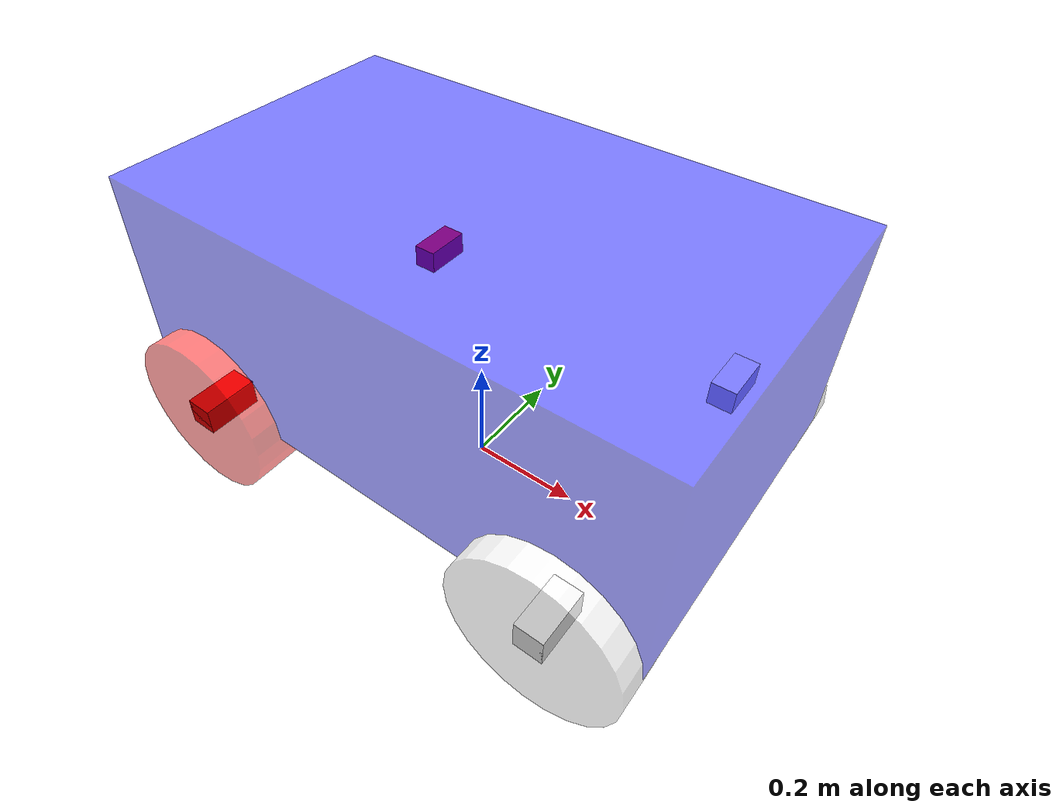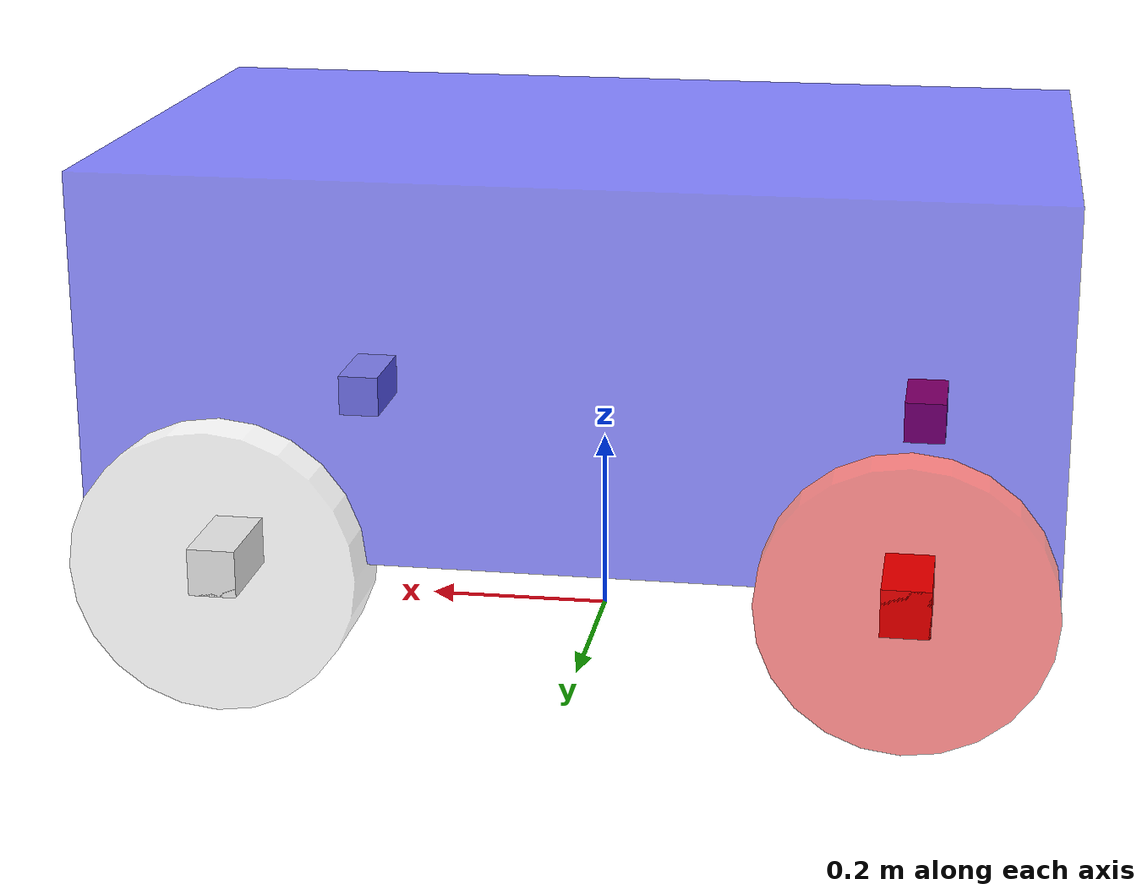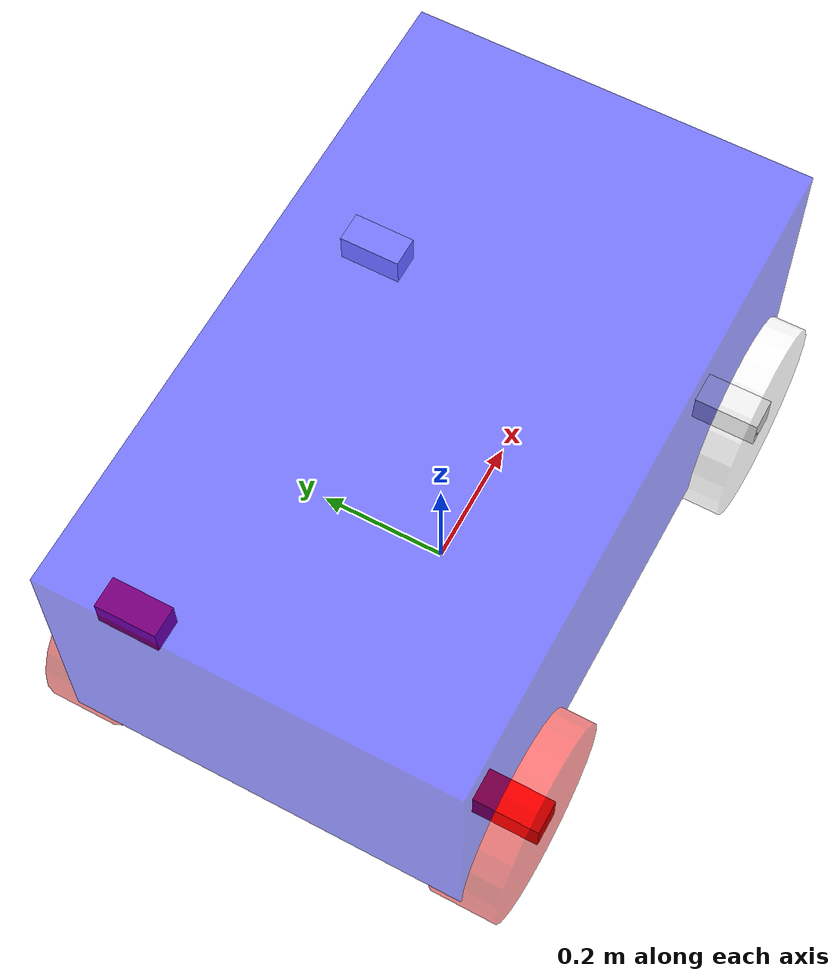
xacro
<?xml version="1.0" ?>
<robot name="ackermann11" xmlns:xacro="http://www.ros.org/wiki/xacro">

	<xacro:property name="PI" value="3.1415926" />
	<!--基座-->
	<xacro:property name="base_height" value="0.4" />
	<xacro:property name="base_width" value="0.6" />
	<xacro:property name="base_length" value="1.0" />
	<xacro:property name="base2ground" value="0.15" />
	<!--车轮-->
	<xacro:property name="wheel_radius" value="0.15" />
	<xacro:property name="wheel_length" value="0.1" />
	<xacro:property name="wheel_max_angle" value="${30/180*PI}" />

	<!--连接杆-->
	<xacro:property name="steer_link_length" value="0.05" />
	<xacro:property name="steer_link_width" value="0.1" />
	<xacro:property name="steer_link_height" value="0.05" />
	<!--质量-->
	<xacro:property name="base_m" value="60" />
	<xacro:property name="wheel_m" value="15" />
	<xacro:property name="steer_link_m" value="3" />

	<xacro:include filename="inertial_matrix.xacro"/>

	<link name="base_footprint">
		<visual>
            <origin xyz="0.0 0.0 0.0" rpy="0.0 0.0 0.0"/>
            <geometry>
                <sphere radius="0.001"/>
            </geometry>
            <material name="yellow">
                <color rgba="0.8 0.3 0.1 0.5" />
            </material>
        </visual>
        <collision>
            <origin xyz="0.0 0.0 0.0" rpy="0.0 0.0 0.0"/>
            <geometry>
                <sphere radius="0"/>
            </geometry>
        </collision>
    </link>

    <link name="base_link">
        <xacro:Box_inertial_matrix m="${base_m}" l="${base_length}" w="${base_width}" h="${base_height}" />
        <visual>
            <origin xyz="0.0 0.0 0.0" rpy="0.0 0.0 0.0"/>
            <geometry>
                <box size="${base_length} ${base_width} ${base_height}"/>
            </geometry>
            <material name="blue">
                <color rgba="0 0 1.0 0.5" />
            </material>
        </visual>
        <collision>
            <origin xyz="0.0 0.0 0.0" rpy="0.0 0.0 0.0"/>
            <geometry>
                <box size="${base_length} ${base_width} ${base_height}"/>
            </geometry>
        </collision>
    </link>
    <gazebo reference="base_link">
            <material>Gazebo/Blue</material>
    </gazebo>
    <joint name="base_link2base_footprint" type="fixed">
        <parent link="base_footprint"/>
        <child link="base_link"/>
        <origin xyz="0.0 0.0 ${base2ground+base_height/2+0.001}" rpy="0.0 0.0 0.0"/>
    </joint>

	<xacro:macro name="define_front" params="name flag">
		<link name="${name}_front_steer_link">
			<visual>
				<geometry>
					<box size="${steer_link_length} ${steer_link_width} ${steer_link_height}"/>
				</geometry>
				<origin xyz="0.0 0.0 0.0" rpy="0.0 0.0 0.0"/>
				<material name="white1">
					<color rgba="1.0 1.0 1.0 0"/>
				</material>
			</visual>
			<collision>
				<origin xyz="0.0 0.0 0.0" rpy="0.0 0.0 0.0"/>
				<geometry>
					<box size="${steer_link_length} ${steer_link_width} ${steer_link_height}"/>
				</geometry>
			</collision>
			<xacro:Box_inertial_matrix m="${steer_link_m}" l="${steer_link_length}" w="${steer_link_width}" h="${steer_link_height}"/>
		</link>
		<gazebo reference="${name}_front_steer_link">
			<material>Gazebo/White</material>
		</gazebo>

		<joint name="${name}_front_steerlink2base_joint" type="revolute">
			<parent link="base_link"/>
			<child link="${name}_front_steer_link"/>
			<origin xyz="${base_length/2-wheel_radius} ${flag*(base_width/2+wheel_length/2-steer_link_width/2)} ${-(base2ground+base_height/2-wheel_radius)}" rpy="0.0 0.0 0.0"/>
			<axis xyz="0 0 1"/>
			<dynamics damping="0.5" />
            <limit lower="${-wheel_max_angle}" upper="${wheel_max_angle}" effort="0" velocity="3"/>
		</joint>

		<link name="${name}_front_wheel_link">
			<visual>
				<geometry>
					<cylinder length="${wheel_length}" radius="${wheel_radius}"/>
				</geometry>
				<origin xyz="0.0 0.0 0.0" rpy="${-PI/2} 0.0 0.0"/>
				<material name="white">
					<color rgba="1.0 1.0 1.0 0.5"/>
				</material>
			</visual>
			<collision>
				<geometry>
					<cylinder length="${wheel_length}" radius="${wheel_radius}"/>
				</geometry>
				<origin xyz="0.0 0.0 0.0" rpy="${-PI/2} 0.0 0.0"/>
			</collision>
			<xacro:cylinder_inertial_matrix m="${wheel_m}" r="${wheel_radius}" h="${wheel_length}"/>
		</link>
		<gazebo reference="${name}_front_wheel_link">
			<material>Gazebo/White</material>
			<mu1>0.9</mu1>
			<mu2>0.6</mu2>
		</gazebo>

		<joint name="${name}_frontwheel2steerlink_joint" type="continuous">
			<parent link="${name}_front_steer_link"/>
			<child link="${name}_front_wheel_link"/>
			<origin xyz="0.0 ${-flag*(steer_link_width/2 - wheel_length/2)} 0.0" rpy="0.0 0.0 0.0"/>
			<axis xyz="0 1 0"/>
		</joint>

		<transmission name="${name}_steer_trans">
            <type>transmission_interface/SimpleTransmission</type>
            <joint name="${name}_front_steerlink2base_joint">
                <hardwareInterface>hardware_interface/PositionJointInterface</hardwareInterface>
            </joint>
            <actuator name="${name}_steer_actuator">
                <mechanicalReduction>1.0</mechanicalReduction>
                <hardwareInterface>hardware_interface/PositionJointInterface</hardwareInterface>
            </actuator>
        </transmission>
	</xacro:macro>

	<xacro:define_front name="left" flag="1"/>
	<xacro:define_front name="right" flag="-1"/>

	<xacro:macro name="define_rear" params="name flag" >
		<link name="${name}_rear_steer_link">
			<visual>
				<geometry>
					<box size="${steer_link_length} ${steer_link_width} ${steer_link_height}"/>
				</geometry>
				<origin xyz="0.0 0.0 0.0" rpy="0.0 0.0 0.0"/>
				<material name="red1">
					<color rgba="1.0 0.0 0.0 0"/>
				</material>
			</visual>
			<collision>
				<origin xyz="0.0 0.0 0.0" rpy="0.0 0.0 0.0"/>
				<geometry>
					<box size="${steer_link_length} ${steer_link_width} ${steer_link_height}"/>
				</geometry>
			</collision>
			<xacro:Box_inertial_matrix m="${steer_link_m}" l="${steer_link_length}" w="${steer_link_width}" h="${steer_link_height}"/>
		</link>
		<gazebo reference="${name}_rear_steer_link">
			<material>Gazebo/Red</material>
		</gazebo>

		<joint name="${name}_rear_steerlink2base_joint" type="fixed">
			<parent link="base_link"/>
			<child link="${name}_rear_steer_link"/>
			<origin xyz="${-(base_length/2-wheel_radius)} ${flag*(base_width/2+wheel_length/2-steer_link_width/2)} ${-(base2ground+base_height/2-wheel_radius)}" rpy="0.0 0.0 0.0"/>
		</joint>

		<link name="${name}_rear_wheel_link">
			<visual>
				<geometry>
					<cylinder length="${wheel_length}" radius="${wheel_radius}"/>
				</geometry>
				<origin xyz="0.0 0.0 0.0" rpy="${-PI/2} 0.0 0.0"/>
				<material name="red">
					<color rgba="1.0 0.0 0.0 0.5"/>
				</material>
			</visual>
			<collision>
				<geometry>
					<cylinder length="${wheel_length}" radius="${wheel_radius}"/>
				</geometry>
				<origin xyz="0.0 0.0 0.0" rpy="${-PI/2} 0.0 0.0"/>
			</collision>
			<xacro:cylinder_inertial_matrix m="${wheel_m}" r="${wheel_radius}" h="${wheel_length}"/>
		</link>
		<gazebo reference="${name}_rear_wheel_link">
			<material>Gazebo/Red</material>
			<mu1>1.8</mu1>
			<mu2>1.2</mu2>
		</gazebo>

		<joint name="${name}_rearwheel2steerlink_joint" type="continuous">
			<parent link="${name}_rear_steer_link"/>
			<child link="${name}_rear_wheel_link"/>
			<origin xyz="0.0 ${-flag*(steer_link_width/2 - wheel_length/2)} 0.0" rpy="0.0 0.0 0.0"/>
			<axis xyz="0 1 0"/>
		</joint>

		<transmission name="${name}_rear_wheel_trans">
            <type>transmission_interface/SimpleTransmission</type>
            <joint name="${name}_rearwheel2steerlink_joint">
                <hardwareInterface>hardware_interface/VelocityJointInterface</hardwareInterface>
            </joint>
            <actuator name="${name}_rear_wheel_actuator">
                <mechanicalReduction>1.0</mechanicalReduction>
                <hardwareInterface>hardware_interface/VelocityJointInterface</hardwareInterface>
            </actuator>
        </transmission>
	</xacro:macro>

	<xacro:define_rear name="left" flag="1"/>
	<xacro:define_rear name="right" flag="-1"/>

	<gazebo>
        <plugin name="gazebo_ros_control" filename="libgazebo_ros_control.so">
            <robotParam>robot_description</robotParam>
            <robotSimType>gazebo_ros_control/DefaultRobotHWSim</robotSimType>
            <legacyModeNS>true</legacyModeNS>
            <robotBaseFrame>base_footprint</robotBaseFrame>
            <publishJointStates>false</publishJointStates>
        </plugin>
        <publishJointState>false</publishJointState>
    </gazebo>
    <gazebo reference="base_footprint">
        <turnGravityOff>true</turnGravityOff>
    </gazebo>

	<gazebo reference="base_link">
		<gravity>true</gravity>
		<sensor name="imu_sensor" type="imu">
		<always_on>true</always_on>
		<update_rate>100</update_rate>
		<visualize>true</visualize>
		<topic>__default_topic__</topic>
		<plugin filename="libgazebo_ros_imu_sensor.so" name="imu_plugin">
		    <topicName>imu</topicName>
		    <appendRobotNamespace>true</appendRobotNamespace>
		    <bodyName>base_link</bodyName>
		    <updateRateHZ>100.0</updateRateHZ>
		    <gaussianNoise>0.0</gaussianNoise>
		    <xyzOffset>0 0 0</xyzOffset>
		    <rpyOffset>0 0 0</rpyOffset>
		    <frameName>imu_link</frameName>
		</plugin>
		<pose>0 0 0 0 0 0</pose>
		</sensor>
	</gazebo>

</robot>

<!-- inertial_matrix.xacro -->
<robot name="ackermann_base_final" xmlns:xacro="http://wiki.ros.org/xacro">
    <!-- Macro for inertia matrix -->
    <xacro:macro name="sphere_inertial_matrix" params="m r">
        <inertial>
            <mass value="${m}" />
            <inertia ixx="${2*m*r*r/5}" ixy="0" ixz="0"
                iyy="${2*m*r*r/5}" iyz="0"
                izz="${2*m*r*r/5}" />
        </inertial>
    </xacro:macro>

    <xacro:macro name="cylinder_inertial_matrix" params="m r h">
        <inertial>
            <mass value="${m}" />
            <inertia ixx="${m*(3*r*r+h*h)/12}" ixy = "0" ixz = "0"
                iyy="${m*(3*r*r+h*h)/12}" iyz = "0"
                izz="${m*r*r/2}" />
        </inertial>
    </xacro:macro>

    <xacro:macro name="Box_inertial_matrix" params="m l w h">
       <inertial>
               <mass value="${m}" />
               <inertia ixx="${m*(h*h + l*l)/12}" ixy = "0" ixz = "0"
                   iyy="${m*(w*w + l*l)/12}" iyz= "0"
                   izz="${m*(w*w + h*h)/12}" />
       </inertial>
   </xacro:macro>
</robot>
